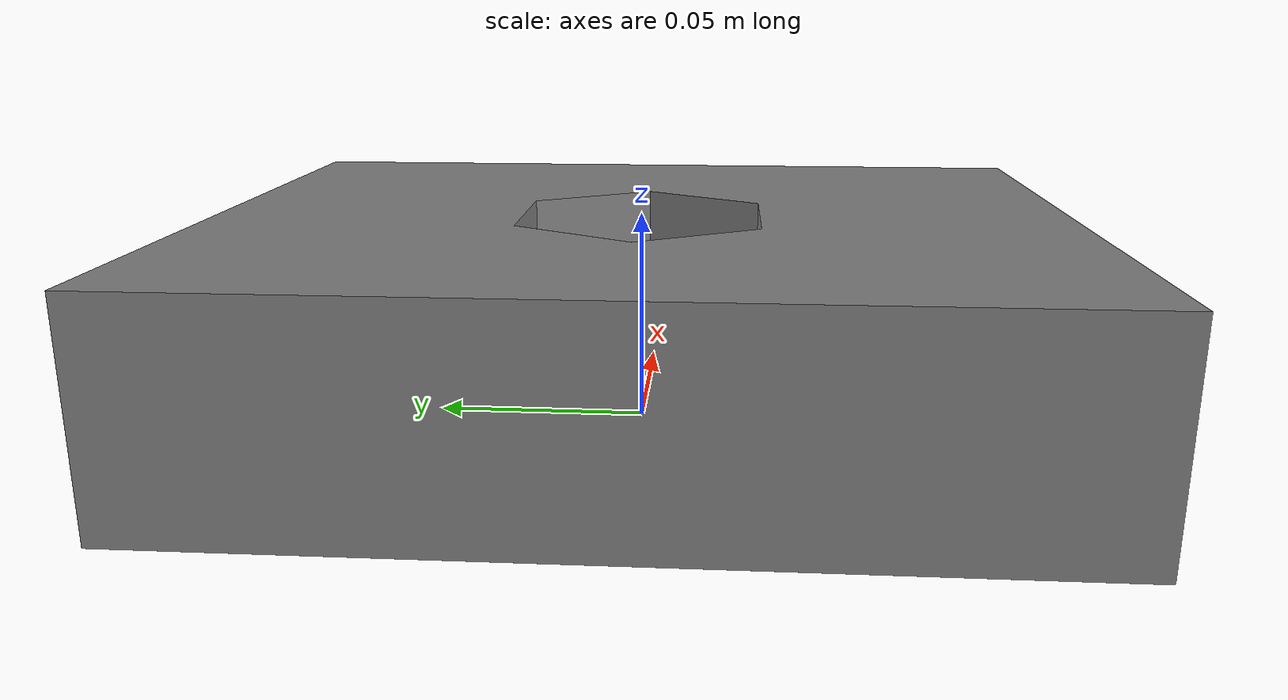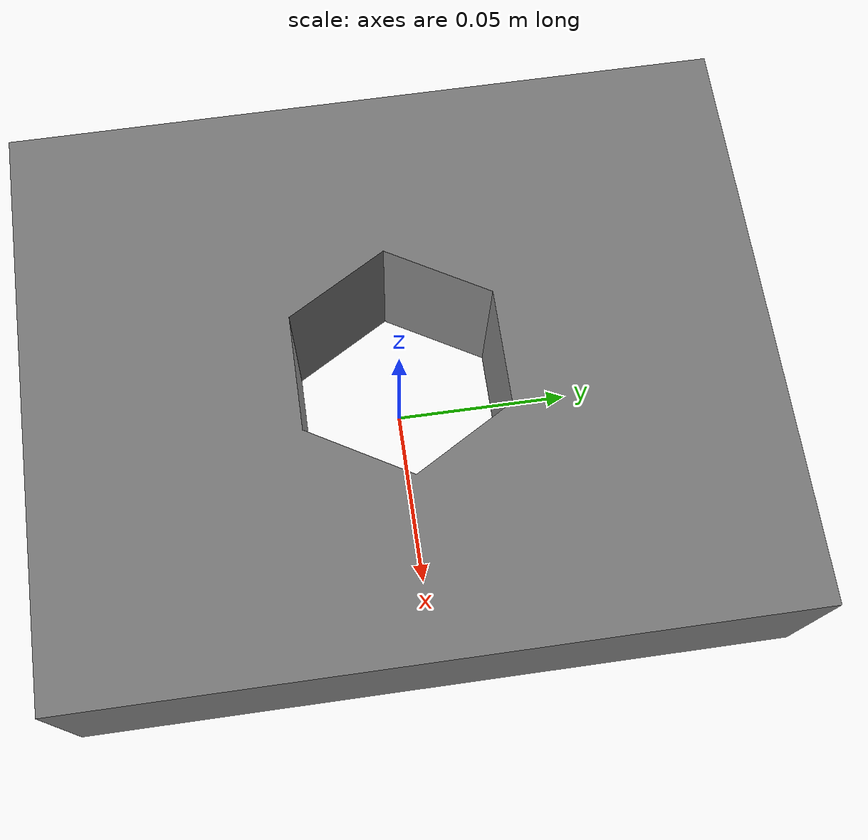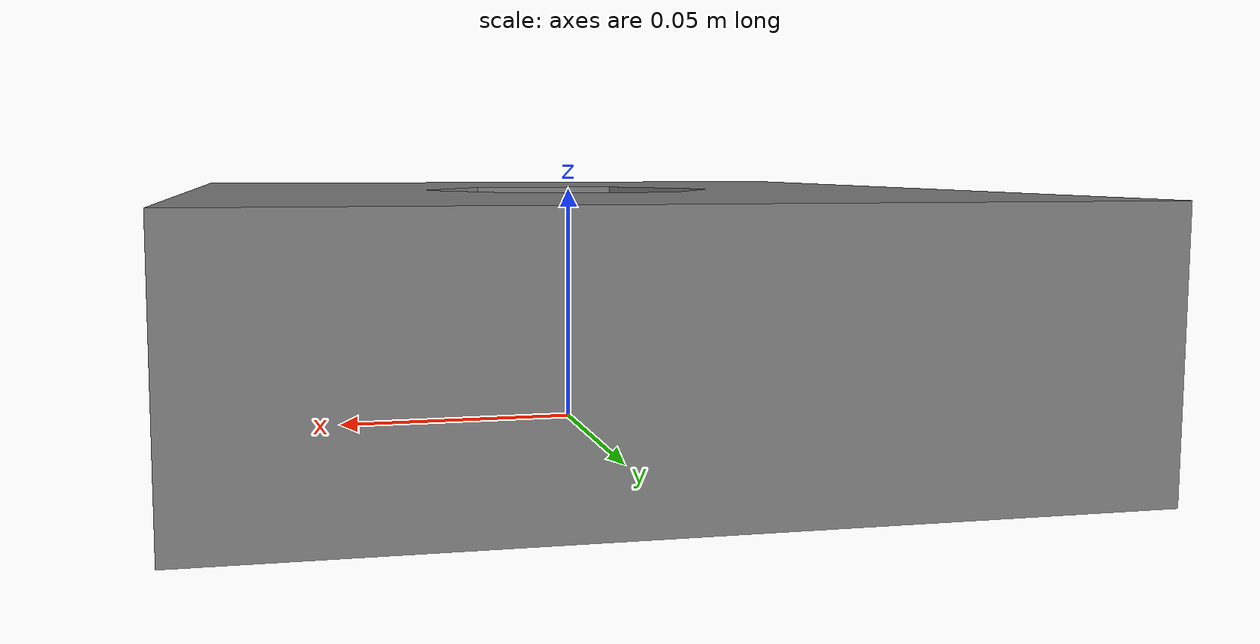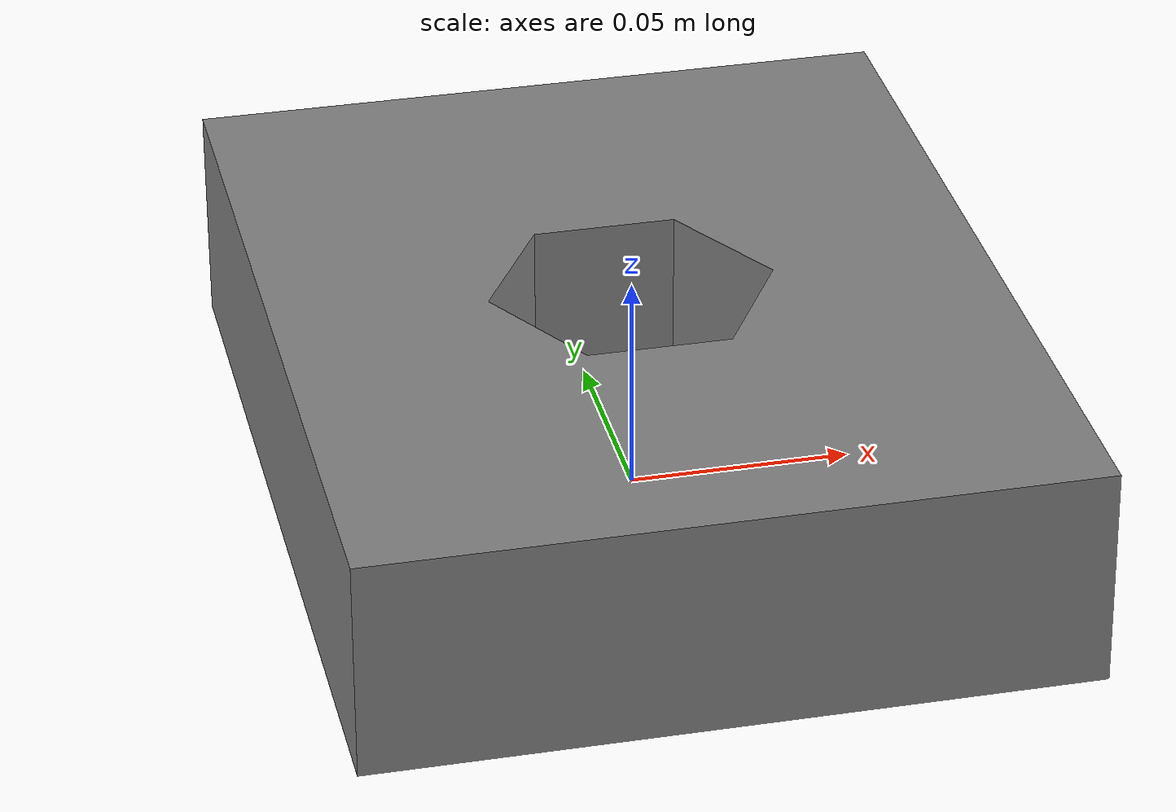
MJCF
<mujoco model="socket_hex">
  <default>
    <default class="visual">
      <geom group="2" type="mesh" contype="0" conaffinity="0"/>
    </default>
    <default class="collision">
      <geom group="3" type="mesh"/>
    </default>
  </default>
  <asset>
    <mesh file="socket_hex.obj"/>
    <mesh file="socket_hex_collision_0.obj"/>
    <mesh file="socket_hex_collision_1.obj"/>
    <mesh file="socket_hex_collision_2.obj"/>
    <mesh file="socket_hex_collision_3.obj"/>
    <mesh file="socket_hex_collision_4.obj"/>
    <mesh file="socket_hex_collision_5.obj"/>
  </asset>
  <worldbody>
    <body name="socket_hex">
      <geom mesh="socket_hex" class="visual"/>
      <geom mesh="socket_hex_collision_0" rgba="0.2557881210767454 0.9754795613521962 0.9997426313955765 1" class="collision"/>
      <geom mesh="socket_hex_collision_1" rgba="0.8946545233848701 0.8718959295392946 0.867920819576107 1" class="collision"/>
      <geom mesh="socket_hex_collision_2" rgba="0.11158629009073107 0.2746771035957155 0.8913577391234391 1" class="collision"/>
      <geom mesh="socket_hex_collision_3" rgba="0.6002168324133524 0.9551524622392282 0.41768147035103176 1" class="collision"/>
      <geom mesh="socket_hex_collision_4" rgba="0.7420353497136923 0.85462132911833 0.3024570262717401 1" class="collision"/>
      <geom mesh="socket_hex_collision_5" rgba="0.9945382781746611 0.18671813803231352 0.6856489650736352 1" class="collision"/>
    </body>
  </worldbody>
</mujoco>
